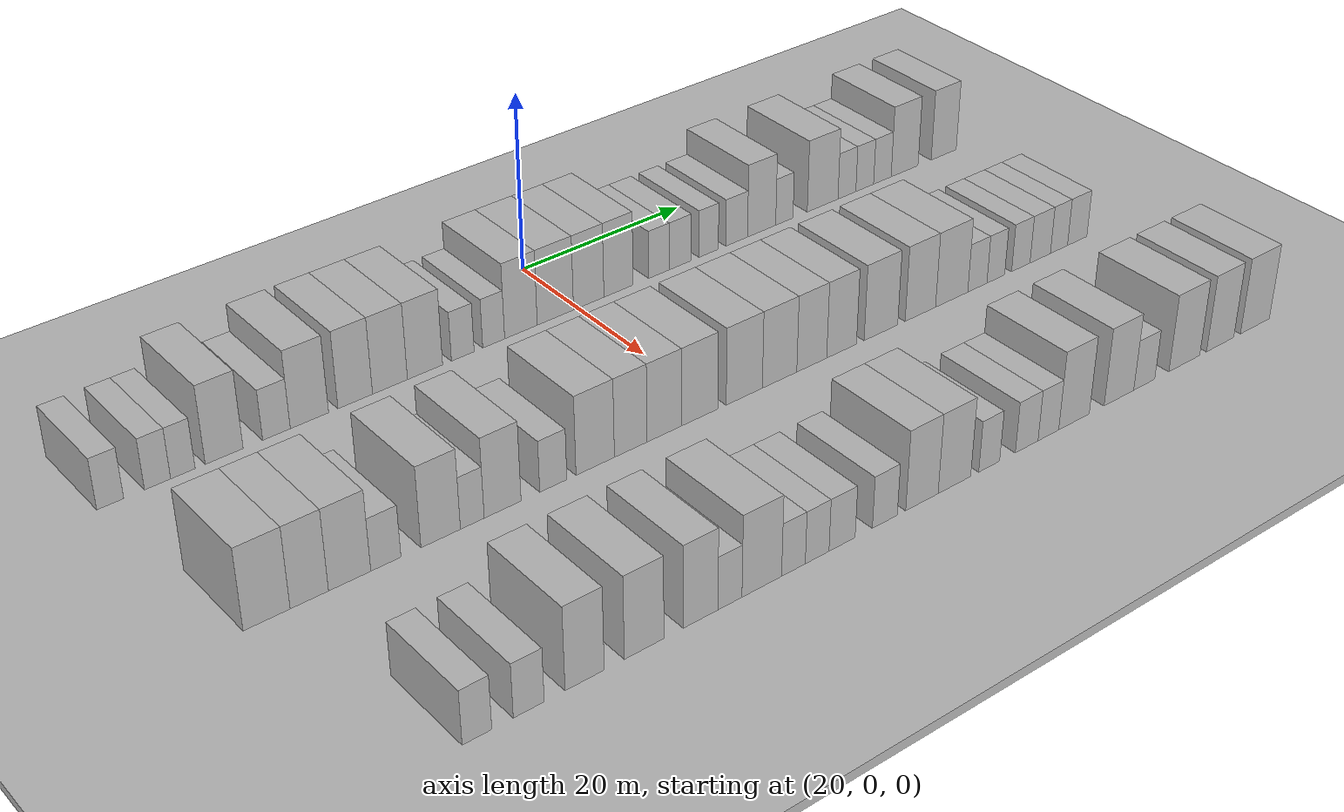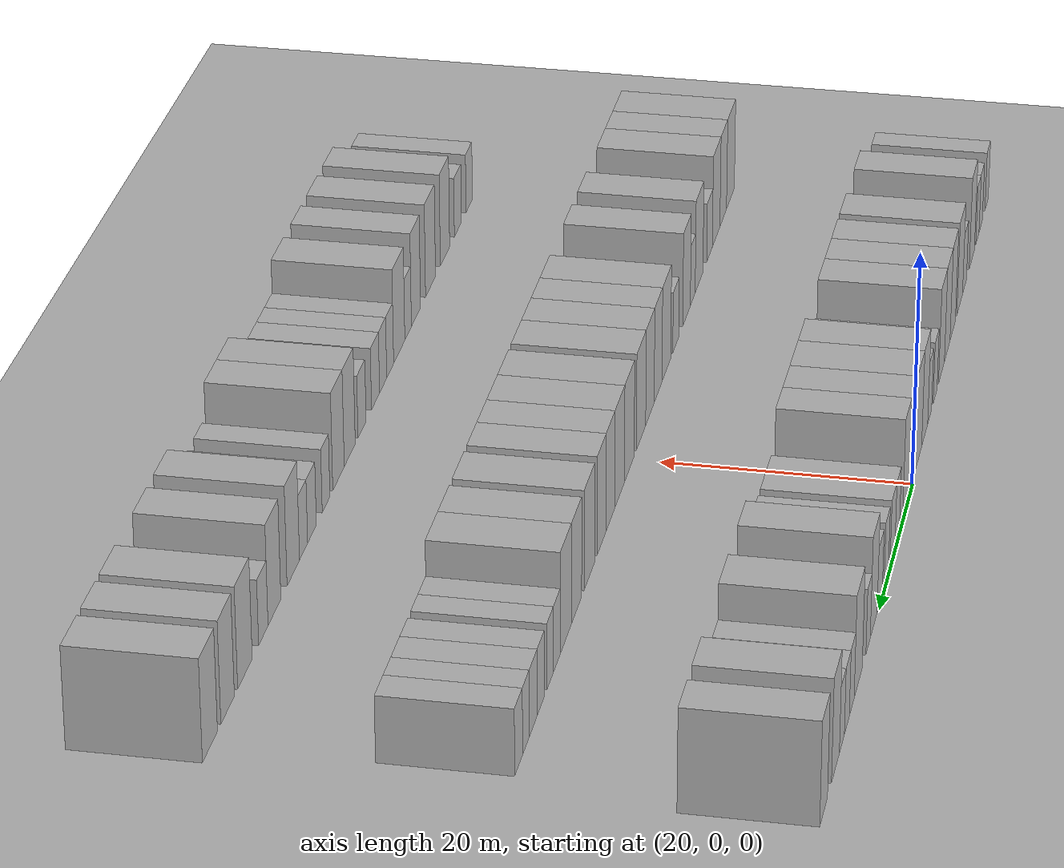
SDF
<sdf version="1.6">
 <world name="default">
  <include><name>ground_plane_1</name><uri>model://HANNAS_ground_plane</uri></include>
  <include>
   <name>ground_plane_2</name>
   <uri>model://HANNAS_ground_plane</uri>
   <pose>100 0 0  0 0 0</pose>
  </include>
  <model name="building_52">
   <static>1</static>
   <pose>25.0000 -51.0247 0 0.000000 0.000000 0.000000</pose>
   <link name="link">
    <pose>0 0 3.00 0 0 0</pose>
    <collision name="collision"><geometry><box><size>10.0000 2.5720 6.0000</size></box></geometry></collision>
    <visual name="visual">
     <cast_shadows>0</cast_shadows>
     <geometry><box><size>10.0000 2.5720 6.0000</size></box></geometry>
     <material>
      <script>
       <uri>model://HANNAS_wall/materials/scripts</uri>
       <uri>model://HANNAS_wall/materials/textures</uri>
       <name>vrc/HANNAS_wall</name>
      </script>
     </material>
    </visual>
   </link>
  </model>
  <model name="building_53">
   <static>1</static>
   <pose>25.0000 -46.4626 0 0.000000 0.000000 0.000000</pose>
   <link name="link">
    <pose>0 0 3.00 0 0 0</pose>
    <collision name="collision"><geometry><box><size>10.0000 2.5521 6.0000</size></box></geometry></collision>
    <visual name="visual">
     <cast_shadows>0</cast_shadows>
     <geometry><box><size>10.0000 2.5521 6.0000</size></box></geometry>
     <material>
      <script>
       <uri>model://HANNAS_wall/materials/scripts</uri>
       <uri>model://HANNAS_wall/materials/textures</uri>
       <name>vrc/HANNAS_wall</name>
      </script>
     </material>
    </visual>
   </link>
  </model>
  <model name="building_54">
   <static>1</static>
   <pose>25.0000 -43.9771 0 0.000000 0.000000 0.000000</pose>
   <link name="link">
    <pose>0 0 3.00 0 0 0</pose>
    <collision name="collision"><geometry><box><size>10.0000 2.4189 6.0000</size></box></geometry></collision>
    <visual name="visual">
     <cast_shadows>0</cast_shadows>
     <geometry><box><size>10.0000 2.4189 6.0000</size></box></geometry>
     <material>
      <script>
       <uri>model://HANNAS_wall/materials/scripts</uri>
       <uri>model://HANNAS_wall/materials/textures</uri>
       <name>vrc/HANNAS_wall</name>
      </script>
     </material>
    </visual>
   </link>
  </model>
  <model name="building_55">
   <static>1</static>
   <pose>25.0000 -39.8528 0 0.000000 0.000000 0.000000</pose>
   <link name="link">
    <pose>0 0 4.50 0 0 0</pose>
    <collision name="collision"><geometry><box><size>10.0000 3.8297 9.0000</size></box></geometry></collision>
    <visual name="visual">
     <cast_shadows>0</cast_shadows>
     <geometry><box><size>10.0000 3.8297 9.0000</size></box></geometry>
     <material>
      <script>
       <uri>model://HANNAS_wall/materials/scripts</uri>
       <uri>model://HANNAS_wall/materials/textures</uri>
       <name>vrc/HANNAS_wall</name>
      </script>
     </material>
    </visual>
   </link>
  </model>
  <model name="building_56">
   <static>1</static>
   <pose>25.0000 -34.5023 0 0.000000 0.000000 0.000000</pose>
   <link name="link">
    <pose>0 0 3.00 0 0 0</pose>
    <collision name="collision"><geometry><box><size>10.0000 2.8714 6.0000</size></box></geometry></collision>
    <visual name="visual">
     <cast_shadows>0</cast_shadows>
     <geometry><box><size>10.0000 2.8714 6.0000</size></box></geometry>
     <material>
      <script>
       <uri>model://HANNAS_wall/materials/scripts</uri>
       <uri>model://HANNAS_wall/materials/textures</uri>
       <name>vrc/HANNAS_wall</name>
      </script>
     </material>
    </visual>
   </link>
  </model>
  <model name="building_57">
   <static>1</static>
   <pose>25.0000 -31.0442 0 0.000000 0.000000 0.000000</pose>
   <link name="link">
    <pose>0 0 4.50 0 0 0</pose>
    <collision name="collision"><geometry><box><size>10.0000 4.0449 9.0000</size></box></geometry></collision>
    <visual name="visual">
     <cast_shadows>0</cast_shadows>
     <geometry><box><size>10.0000 4.0449 9.0000</size></box></geometry>
     <material>
      <script>
       <uri>model://HANNAS_wall/materials/scripts</uri>
       <uri>model://HANNAS_wall/materials/textures</uri>
       <name>vrc/HANNAS_wall</name>
      </script>
     </material>
    </visual>
   </link>
  </model>
  <model name="building_58">
   <static>1</static>
   <pose>25.0000 -26.1471 0 0.000000 0.000000 0.000000</pose>
   <link name="link">
    <pose>0 0 4.50 0 0 0</pose>
    <collision name="collision"><geometry><box><size>10.0000 3.7493 9.0000</size></box></geometry></collision>
    <visual name="visual">
     <cast_shadows>0</cast_shadows>
     <geometry><box><size>10.0000 3.7493 9.0000</size></box></geometry>
     <material>
      <script>
       <uri>model://HANNAS_wall/materials/scripts</uri>
       <uri>model://HANNAS_wall/materials/textures</uri>
       <name>vrc/HANNAS_wall</name>
      </script>
     </material>
    </visual>
   </link>
  </model>
  <model name="building_59">
   <static>1</static>
   <pose>25.0000 -22.3431 0 0.000000 0.000000 0.000000</pose>
   <link name="link">
    <pose>0 0 4.50 0 0 0</pose>
    <collision name="collision"><geometry><box><size>10.0000 3.8588 9.0000</size></box></geometry></collision>
    <visual name="visual">
     <cast_shadows>0</cast_shadows>
     <geometry><box><size>10.0000 3.8588 9.0000</size></box></geometry>
     <material>
      <script>
       <uri>model://HANNAS_wall/materials/scripts</uri>
       <uri>model://HANNAS_wall/materials/textures</uri>
       <name>vrc/HANNAS_wall</name>
      </script>
     </material>
    </visual>
   </link>
  </model>
  <model name="building_60">
   <static>1</static>
   <pose>25.0000 -18.4371 0 0.000000 0.000000 0.000000</pose>
   <link name="link">
    <pose>0 0 4.50 0 0 0</pose>
    <collision name="collision"><geometry><box><size>10.0000 3.9530 9.0000</size></box></geometry></collision>
    <visual name="visual">
     <cast_shadows>0</cast_shadows>
     <geometry><box><size>10.0000 3.9530 9.0000</size></box></geometry>
     <material>
      <script>
       <uri>model://HANNAS_wall/materials/scripts</uri>
       <uri>model://HANNAS_wall/materials/textures</uri>
       <name>vrc/HANNAS_wall</name>
      </script>
     </material>
    </visual>
   </link>
  </model>
  <model name="building_61">
   <static>1</static>
   <pose>25.0000 -14.1558 0 0.000000 0.000000 0.000000</pose>
   <link name="link">
    <pose>0 0 3.00 0 0 0</pose>
    <collision name="collision"><geometry><box><size>10.0000 2.6096 6.0000</size></box></geometry></collision>
    <visual name="visual">
     <cast_shadows>0</cast_shadows>
     <geometry><box><size>10.0000 2.6096 6.0000</size></box></geometry>
     <material>
      <script>
       <uri>model://HANNAS_wall/materials/scripts</uri>
       <uri>model://HANNAS_wall/materials/textures</uri>
       <name>vrc/HANNAS_wall</name>
      </script>
     </material>
    </visual>
   </link>
  </model>
  <model name="building_62">
   <static>1</static>
   <pose>25.0000 -10.5716 0 0.000000 0.000000 0.000000</pose>
   <link name="link">
    <pose>0 0 3.00 0 0 0</pose>
    <collision name="collision"><geometry><box><size>10.0000 2.5587 6.0000</size></box></geometry></collision>
    <visual name="visual">
     <cast_shadows>0</cast_shadows>
     <geometry><box><size>10.0000 2.5587 6.0000</size></box></geometry>
     <material>
      <script>
       <uri>model://HANNAS_wall/materials/scripts</uri>
       <uri>model://HANNAS_wall/materials/textures</uri>
       <name>vrc/HANNAS_wall</name>
      </script>
     </material>
    </visual>
   </link>
  </model>
  <model name="building_63">
   <static>1</static>
   <pose>25.0000 -7.3534 0 0.000000 0.000000 0.000000</pose>
   <link name="link">
    <pose>0 0 4.50 0 0 0</pose>
    <collision name="collision"><geometry><box><size>10.0000 3.8778 9.0000</size></box></geometry></collision>
    <visual name="visual">
     <cast_shadows>0</cast_shadows>
     <geometry><box><size>10.0000 3.8778 9.0000</size></box></geometry>
     <material>
      <script>
       <uri>model://HANNAS_wall/materials/scripts</uri>
       <uri>model://HANNAS_wall/materials/textures</uri>
       <name>vrc/HANNAS_wall</name>
      </script>
     </material>
    </visual>
   </link>
  </model>
  <model name="building_64">
   <static>1</static>
   <pose>25.0000 -3.2205 0 0.000000 0.000000 0.000000</pose>
   <link name="link">
    <pose>0 0 4.50 0 0 0</pose>
    <collision name="collision"><geometry><box><size>10.0000 4.3879 9.0000</size></box></geometry></collision>
    <visual name="visual">
     <cast_shadows>0</cast_shadows>
     <geometry><box><size>10.0000 4.3879 9.0000</size></box></geometry>
     <material>
      <script>
       <uri>model://HANNAS_wall/materials/scripts</uri>
       <uri>model://HANNAS_wall/materials/textures</uri>
       <name>vrc/HANNAS_wall</name>
      </script>
     </material>
    </visual>
   </link>
  </model>
  <model name="building_65">
   <static>1</static>
   <pose>25.0000 0.8537 0 0.000000 0.000000 0.000000</pose>
   <link name="link">
    <pose>0 0 4.50 0 0 0</pose>
    <collision name="collision"><geometry><box><size>10.0000 3.7605 9.0000</size></box></geometry></collision>
    <visual name="visual">
     <cast_shadows>0</cast_shadows>
     <geometry><box><size>10.0000 3.7605 9.0000</size></box></geometry>
     <material>
      <script>
       <uri>model://HANNAS_wall/materials/scripts</uri>
       <uri>model://HANNAS_wall/materials/textures</uri>
       <name>vrc/HANNAS_wall</name>
      </script>
     </material>
    </visual>
   </link>
  </model>
  <model name="building_66">
   <static>1</static>
   <pose>25.0000 4.5661 0 0.000000 0.000000 0.000000</pose>
   <link name="link">
    <pose>0 0 4.50 0 0 0</pose>
    <collision name="collision"><geometry><box><size>10.0000 3.6642 9.0000</size></box></geometry></collision>
    <visual name="visual">
     <cast_shadows>0</cast_shadows>
     <geometry><box><size>10.0000 3.6642 9.0000</size></box></geometry>
     <material>
      <script>
       <uri>model://HANNAS_wall/materials/scripts</uri>
       <uri>model://HANNAS_wall/materials/textures</uri>
       <name>vrc/HANNAS_wall</name>
      </script>
     </material>
    </visual>
   </link>
  </model>
  <model name="building_67">
   <static>1</static>
   <pose>25.0000 9.7088 0 0.000000 0.000000 0.000000</pose>
   <link name="link">
    <pose>0 0 3.00 0 0 0</pose>
    <collision name="collision"><geometry><box><size>10.0000 2.6213 6.0000</size></box></geometry></collision>
    <visual name="visual">
     <cast_shadows>0</cast_shadows>
     <geometry><box><size>10.0000 2.6213 6.0000</size></box></geometry>
     <material>
      <script>
       <uri>model://HANNAS_wall/materials/scripts</uri>
       <uri>model://HANNAS_wall/materials/textures</uri>
       <name>vrc/HANNAS_wall</name>
      </script>
     </material>
    </visual>
   </link>
  </model>
  <model name="building_68">
   <static>1</static>
   <pose>25.0000 12.4688 0 0.000000 0.000000 0.000000</pose>
   <link name="link">
    <pose>0 0 3.00 0 0 0</pose>
    <collision name="collision"><geometry><box><size>10.0000 2.8986 6.0000</size></box></geometry></collision>
    <visual name="visual">
     <cast_shadows>0</cast_shadows>
     <geometry><box><size>10.0000 2.8986 6.0000</size></box></geometry>
     <material>
      <script>
       <uri>model://HANNAS_wall/materials/scripts</uri>
       <uri>model://HANNAS_wall/materials/textures</uri>
       <name>vrc/HANNAS_wall</name>
      </script>
     </material>
    </visual>
   </link>
  </model>
  <model name="building_69">
   <static>1</static>
   <pose>25.0000 16.1987 0 0.000000 0.000000 0.000000</pose>
   <link name="link">
    <pose>0 0 3.00 0 0 0</pose>
    <collision name="collision"><geometry><box><size>10.0000 2.5612 6.0000</size></box></geometry></collision>
    <visual name="visual">
     <cast_shadows>0</cast_shadows>
     <geometry><box><size>10.0000 2.5612 6.0000</size></box></geometry>
     <material>
      <script>
       <uri>model://HANNAS_wall/materials/scripts</uri>
       <uri>model://HANNAS_wall/materials/textures</uri>
       <name>vrc/HANNAS_wall</name>
      </script>
     </material>
    </visual>
   </link>
  </model>
  <model name="building_70">
   <static>1</static>
   <pose>25.0000 19.9389 0 0.000000 0.000000 0.000000</pose>
   <link name="link">
    <pose>0 0 3.00 0 0 0</pose>
    <collision name="collision"><geometry><box><size>10.0000 2.9192 6.0000</size></box></geometry></collision>
    <visual name="visual">
     <cast_shadows>0</cast_shadows>
     <geometry><box><size>10.0000 2.9192 6.0000</size></box></geometry>
     <material>
      <script>
       <uri>model://HANNAS_wall/materials/scripts</uri>
       <uri>model://HANNAS_wall/materials/textures</uri>
       <name>vrc/HANNAS_wall</name>
      </script>
     </material>
    </visual>
   </link>
  </model>
  <model name="building_71">
   <static>1</static>
   <pose>25.0000 23.3274 0 0.000000 0.000000 0.000000</pose>
   <link name="link">
    <pose>0 0 4.50 0 0 0</pose>
    <collision name="collision"><geometry><box><size>10.0000 3.8577 9.0000</size></box></geometry></collision>
    <visual name="visual">
     <cast_shadows>0</cast_shadows>
     <geometry><box><size>10.0000 3.8577 9.0000</size></box></geometry>
     <material>
      <script>
       <uri>model://HANNAS_wall/materials/scripts</uri>
       <uri>model://HANNAS_wall/materials/textures</uri>
       <name>vrc/HANNAS_wall</name>
      </script>
     </material>
    </visual>
   </link>
  </model>
  <model name="building_72">
   <static>1</static>
   <pose>25.0000 26.4591 0 0.000000 0.000000 0.000000</pose>
   <link name="link">
    <pose>0 0 3.00 0 0 0</pose>
    <collision name="collision"><geometry><box><size>10.0000 2.4058 6.0000</size></box></geometry></collision>
    <visual name="visual">
     <cast_shadows>0</cast_shadows>
     <geometry><box><size>10.0000 2.4058 6.0000</size></box></geometry>
     <material>
      <script>
       <uri>model://HANNAS_wall/materials/scripts</uri>
       <uri>model://HANNAS_wall/materials/textures</uri>
       <name>vrc/HANNAS_wall</name>
      </script>
     </material>
    </visual>
   </link>
  </model>
  <model name="building_73">
   <static>1</static>
   <pose>25.0000 31.8438 0 0.000000 0.000000 0.000000</pose>
   <link name="link">
    <pose>0 0 4.50 0 0 0</pose>
    <collision name="collision"><geometry><box><size>10.0000 4.3636 9.0000</size></box></geometry></collision>
    <visual name="visual">
     <cast_shadows>0</cast_shadows>
     <geometry><box><size>10.0000 4.3636 9.0000</size></box></geometry>
     <material>
      <script>
       <uri>model://HANNAS_wall/materials/scripts</uri>
       <uri>model://HANNAS_wall/materials/textures</uri>
       <name>vrc/HANNAS_wall</name>
      </script>
     </material>
    </visual>
   </link>
  </model>
  <model name="building_74">
   <static>1</static>
   <pose>25.0000 35.3195 0 0.000000 0.000000 0.000000</pose>
   <link name="link">
    <pose>0 0 3.00 0 0 0</pose>
    <collision name="collision"><geometry><box><size>10.0000 2.5879 6.0000</size></box></geometry></collision>
    <visual name="visual">
     <cast_shadows>0</cast_shadows>
     <geometry><box><size>10.0000 2.5879 6.0000</size></box></geometry>
     <material>
      <script>
       <uri>model://HANNAS_wall/materials/scripts</uri>
       <uri>model://HANNAS_wall/materials/textures</uri>
       <name>vrc/HANNAS_wall</name>
      </script>
     </material>
    </visual>
   </link>
  </model>
  <model name="building_75">
   <static>1</static>
   <pose>25.0000 37.9067 0 0.000000 0.000000 0.000000</pose>
   <link name="link">
    <pose>0 0 3.00 0 0 0</pose>
    <collision name="collision"><geometry><box><size>10.0000 2.5865 6.0000</size></box></geometry></collision>
    <visual name="visual">
     <cast_shadows>0</cast_shadows>
     <geometry><box><size>10.0000 2.5865 6.0000</size></box></geometry>
     <material>
      <script>
       <uri>model://HANNAS_wall/materials/scripts</uri>
       <uri>model://HANNAS_wall/materials/textures</uri>
       <name>vrc/HANNAS_wall</name>
      </script>
     </material>
    </visual>
   </link>
  </model>
  <model name="building_76">
   <static>1</static>
   <pose>25.0000 40.4949 0 0.000000 0.000000 0.000000</pose>
   <link name="link">
    <pose>0 0 3.00 0 0 0</pose>
    <collision name="collision"><geometry><box><size>10.0000 2.5899 6.0000</size></box></geometry></collision>
    <visual name="visual">
     <cast_shadows>0</cast_shadows>
     <geometry><box><size>10.0000 2.5899 6.0000</size></box></geometry>
     <material>
      <script>
       <uri>model://HANNAS_wall/materials/scripts</uri>
       <uri>model://HANNAS_wall/materials/textures</uri>
       <name>vrc/HANNAS_wall</name>
      </script>
     </material>
    </visual>
   </link>
  </model>
  <model name="building_77">
   <static>1</static>
   <pose>25.0000 43.8039 0 0.000000 0.000000 0.000000</pose>
   <link name="link">
    <pose>0 0 4.50 0 0 0</pose>
    <collision name="collision"><geometry><box><size>10.0000 4.0281 9.0000</size></box></geometry></collision>
    <visual name="visual">
     <cast_shadows>0</cast_shadows>
     <geometry><box><size>10.0000 4.0281 9.0000</size></box></geometry>
     <material>
      <script>
       <uri>model://HANNAS_wall/materials/scripts</uri>
       <uri>model://HANNAS_wall/materials/textures</uri>
       <name>vrc/HANNAS_wall</name>
      </script>
     </material>
    </visual>
   </link>
  </model>
  <model name="building_78">
   <static>1</static>
   <pose>25.0000 49.7385 0 0.000000 0.000000 0.000000</pose>
   <link name="link">
    <pose>0 0 4.50 0 0 0</pose>
    <collision name="collision"><geometry><box><size>10.0000 3.8412 9.0000</size></box></geometry></collision>
    <visual name="visual">
     <cast_shadows>0</cast_shadows>
     <geometry><box><size>10.0000 3.8412 9.0000</size></box></geometry>
     <material>
      <script>
       <uri>model://HANNAS_wall/materials/scripts</uri>
       <uri>model://HANNAS_wall/materials/textures</uri>
       <name>vrc/HANNAS_wall</name>
      </script>
     </material>
    </visual>
   </link>
  </model>
  <model name="building_173">
   <static>1</static>
   <pose>47.0000 -48.1587 0 0.000000 0.000000 0.000000</pose>
   <link name="link">
    <pose>0 0 4.50 0 0 0</pose>
    <collision name="collision"><geometry><box><size>10.0000 4.3637 9.0000</size></box></geometry></collision>
    <visual name="visual">
     <cast_shadows>0</cast_shadows>
     <geometry><box><size>10.0000 4.3637 9.0000</size></box></geometry>
     <material>
      <script>
       <uri>model://HANNAS_wall/materials/scripts</uri>
       <uri>model://HANNAS_wall/materials/textures</uri>
       <name>vrc/HANNAS_wall</name>
      </script>
     </material>
    </visual>
   </link>
  </model>
  <model name="building_174">
   <static>1</static>
   <pose>47.0000 -44.1613 0 0.000000 0.000000 0.000000</pose>
   <link name="link">
    <pose>0 0 4.50 0 0 0</pose>
    <collision name="collision"><geometry><box><size>10.0000 3.6310 9.0000</size></box></geometry></collision>
    <visual name="visual">
     <cast_shadows>0</cast_shadows>
     <geometry><box><size>10.0000 3.6310 9.0000</size></box></geometry>
     <material>
      <script>
       <uri>model://HANNAS_wall/materials/scripts</uri>
       <uri>model://HANNAS_wall/materials/textures</uri>
       <name>vrc/HANNAS_wall</name>
      </script>
     </material>
    </visual>
   </link>
  </model>
  <model name="building_175">
   <static>1</static>
   <pose>47.0000 -40.2994 0 0.000000 0.000000 0.000000</pose>
   <link name="link">
    <pose>0 0 4.50 0 0 0</pose>
    <collision name="collision"><geometry><box><size>10.0000 4.0929 9.0000</size></box></geometry></collision>
    <visual name="visual">
     <cast_shadows>0</cast_shadows>
     <geometry><box><size>10.0000 4.0929 9.0000</size></box></geometry>
     <material>
      <script>
       <uri>model://HANNAS_wall/materials/scripts</uri>
       <uri>model://HANNAS_wall/materials/textures</uri>
       <name>vrc/HANNAS_wall</name>
      </script>
     </material>
    </visual>
   </link>
  </model>
  <model name="building_176">
   <static>1</static>
   <pose>47.0000 -36.7631 0 0.000000 0.000000 0.000000</pose>
   <link name="link">
    <pose>0 0 3.00 0 0 0</pose>
    <collision name="collision"><geometry><box><size>10.0000 2.9797 6.0000</size></box></geometry></collision>
    <visual name="visual">
     <cast_shadows>0</cast_shadows>
     <geometry><box><size>10.0000 2.9797 6.0000</size></box></geometry>
     <material>
      <script>
       <uri>model://HANNAS_wall/materials/scripts</uri>
       <uri>model://HANNAS_wall/materials/textures</uri>
       <name>vrc/HANNAS_wall</name>
      </script>
     </material>
    </visual>
   </link>
  </model>
  <model name="building_177">
   <static>1</static>
   <pose>47.0000 -31.2637 0 0.000000 0.000000 0.000000</pose>
   <link name="link">
    <pose>0 0 4.50 0 0 0</pose>
    <collision name="collision"><geometry><box><size>10.0000 4.0190 9.0000</size></box></geometry></collision>
    <visual name="visual">
     <cast_shadows>0</cast_shadows>
     <geometry><box><size>10.0000 4.0190 9.0000</size></box></geometry>
     <material>
      <script>
       <uri>model://HANNAS_wall/materials/scripts</uri>
       <uri>model://HANNAS_wall/materials/textures</uri>
       <name>vrc/HANNAS_wall</name>
      </script>
     </material>
    </visual>
   </link>
  </model>
  <model name="building_178">
   <static>1</static>
   <pose>47.0000 -28.0204 0 0.000000 0.000000 0.000000</pose>
   <link name="link">
    <pose>0 0 3.00 0 0 0</pose>
    <collision name="collision"><geometry><box><size>10.0000 2.4677 6.0000</size></box></geometry></collision>
    <visual name="visual">
     <cast_shadows>0</cast_shadows>
     <geometry><box><size>10.0000 2.4677 6.0000</size></box></geometry>
     <material>
      <script>
       <uri>model://HANNAS_wall/materials/scripts</uri>
       <uri>model://HANNAS_wall/materials/textures</uri>
       <name>vrc/HANNAS_wall</name>
      </script>
     </material>
    </visual>
   </link>
  </model>
  <model name="building_179">
   <static>1</static>
   <pose>47.0000 -24.8448 0 0.000000 0.000000 0.000000</pose>
   <link name="link">
    <pose>0 0 4.50 0 0 0</pose>
    <collision name="collision"><geometry><box><size>10.0000 3.8834 9.0000</size></box></geometry></collision>
    <visual name="visual">
     <cast_shadows>0</cast_shadows>
     <geometry><box><size>10.0000 3.8834 9.0000</size></box></geometry>
     <material>
      <script>
       <uri>model://HANNAS_wall/materials/scripts</uri>
       <uri>model://HANNAS_wall/materials/textures</uri>
       <name>vrc/HANNAS_wall</name>
      </script>
     </material>
    </visual>
   </link>
  </model>
  <model name="building_180">
   <static>1</static>
   <pose>47.0000 -19.4322 0 0.000000 0.000000 0.000000</pose>
   <link name="link">
    <pose>0 0 3.00 0 0 0</pose>
    <collision name="collision"><geometry><box><size>10.0000 2.9420 6.0000</size></box></geometry></collision>
    <visual name="visual">
     <cast_shadows>0</cast_shadows>
     <geometry><box><size>10.0000 2.9420 6.0000</size></box></geometry>
     <material>
      <script>
       <uri>model://HANNAS_wall/materials/scripts</uri>
       <uri>model://HANNAS_wall/materials/textures</uri>
       <name>vrc/HANNAS_wall</name>
      </script>
     </material>
    </visual>
   </link>
  </model>
  <model name="building_181">
   <static>1</static>
   <pose>47.0000 -14.8256 0 0.000000 0.000000 0.000000</pose>
   <link name="link">
    <pose>0 0 4.50 0 0 0</pose>
    <collision name="collision"><geometry><box><size>10.0000 4.2712 9.0000</size></box></geometry></collision>
    <visual name="visual">
     <cast_shadows>0</cast_shadows>
     <geometry><box><size>10.0000 4.2712 9.0000</size></box></geometry>
     <material>
      <script>
       <uri>model://HANNAS_wall/materials/scripts</uri>
       <uri>model://HANNAS_wall/materials/textures</uri>
       <name>vrc/HANNAS_wall</name>
      </script>
     </material>
    </visual>
   </link>
  </model>
  <model name="building_182">
   <static>1</static>
   <pose>47.0000 -10.8338 0 0.000000 0.000000 0.000000</pose>
   <link name="link">
    <pose>0 0 4.50 0 0 0</pose>
    <collision name="collision"><geometry><box><size>10.0000 3.7123 9.0000</size></box></geometry></collision>
    <visual name="visual">
     <cast_shadows>0</cast_shadows>
     <geometry><box><size>10.0000 3.7123 9.0000</size></box></geometry>
     <material>
      <script>
       <uri>model://HANNAS_wall/materials/scripts</uri>
       <uri>model://HANNAS_wall/materials/textures</uri>
       <name>vrc/HANNAS_wall</name>
      </script>
     </material>
    </visual>
   </link>
  </model>
  <model name="building_183">
   <static>1</static>
   <pose>47.0000 -6.9833 0 0.000000 0.000000 0.000000</pose>
   <link name="link">
    <pose>0 0 4.50 0 0 0</pose>
    <collision name="collision"><geometry><box><size>10.0000 3.9887 9.0000</size></box></geometry></collision>
    <visual name="visual">
     <cast_shadows>0</cast_shadows>
     <geometry><box><size>10.0000 3.9887 9.0000</size></box></geometry>
     <material>
      <script>
       <uri>model://HANNAS_wall/materials/scripts</uri>
       <uri>model://HANNAS_wall/materials/textures</uri>
       <name>vrc/HANNAS_wall</name>
      </script>
     </material>
    </visual>
   </link>
  </model>
  <model name="building_184">
   <static>1</static>
   <pose>47.0000 -2.8457 0 0.000000 0.000000 0.000000</pose>
   <link name="link">
    <pose>0 0 4.50 0 0 0</pose>
    <collision name="collision"><geometry><box><size>10.0000 4.2864 9.0000</size></box></geometry></collision>
    <visual name="visual">
     <cast_shadows>0</cast_shadows>
     <geometry><box><size>10.0000 4.2864 9.0000</size></box></geometry>
     <material>
      <script>
       <uri>model://HANNAS_wall/materials/scripts</uri>
       <uri>model://HANNAS_wall/materials/textures</uri>
       <name>vrc/HANNAS_wall</name>
      </script>
     </material>
    </visual>
   </link>
  </model>
  <model name="building_185">
   <static>1</static>
   <pose>47.0000 2.4934 0 0.000000 0.000000 0.000000</pose>
   <link name="link">
    <pose>0 0 4.50 0 0 0</pose>
    <collision name="collision"><geometry><box><size>10.0000 4.3920 9.0000</size></box></geometry></collision>
    <visual name="visual">
     <cast_shadows>0</cast_shadows>
     <geometry><box><size>10.0000 4.3920 9.0000</size></box></geometry>
     <material>
      <script>
       <uri>model://HANNAS_wall/materials/scripts</uri>
       <uri>model://HANNAS_wall/materials/textures</uri>
       <name>vrc/HANNAS_wall</name>
      </script>
     </material>
    </visual>
   </link>
  </model>
  <model name="building_186">
   <static>1</static>
   <pose>47.0000 6.8278 0 0.000000 0.000000 0.000000</pose>
   <link name="link">
    <pose>0 0 4.50 0 0 0</pose>
    <collision name="collision"><geometry><box><size>10.0000 4.2767 9.0000</size></box></geometry></collision>
    <visual name="visual">
     <cast_shadows>0</cast_shadows>
     <geometry><box><size>10.0000 4.2767 9.0000</size></box></geometry>
     <material>
      <script>
       <uri>model://HANNAS_wall/materials/scripts</uri>
       <uri>model://HANNAS_wall/materials/textures</uri>
       <name>vrc/HANNAS_wall</name>
      </script>
     </material>
    </visual>
   </link>
  </model>
  <model name="building_187">
   <static>1</static>
   <pose>47.0000 10.8590 0 0.000000 0.000000 0.000000</pose>
   <link name="link">
    <pose>0 0 4.50 0 0 0</pose>
    <collision name="collision"><geometry><box><size>10.0000 3.7857 9.0000</size></box></geometry></collision>
    <visual name="visual">
     <cast_shadows>0</cast_shadows>
     <geometry><box><size>10.0000 3.7857 9.0000</size></box></geometry>
     <material>
      <script>
       <uri>model://HANNAS_wall/materials/scripts</uri>
       <uri>model://HANNAS_wall/materials/textures</uri>
       <name>vrc/HANNAS_wall</name>
      </script>
     </material>
    </visual>
   </link>
  </model>
  <model name="building_188">
   <static>1</static>
   <pose>47.0000 14.6752 0 0.000000 0.000000 0.000000</pose>
   <link name="link">
    <pose>0 0 4.50 0 0 0</pose>
    <collision name="collision"><geometry><box><size>10.0000 3.8468 9.0000</size></box></geometry></collision>
    <visual name="visual">
     <cast_shadows>0</cast_shadows>
     <geometry><box><size>10.0000 3.8468 9.0000</size></box></geometry>
     <material>
      <script>
       <uri>model://HANNAS_wall/materials/scripts</uri>
       <uri>model://HANNAS_wall/materials/textures</uri>
       <name>vrc/HANNAS_wall</name>
      </script>
     </material>
    </visual>
   </link>
  </model>
  <model name="building_189">
   <static>1</static>
   <pose>47.0000 19.8191 0 0.000000 0.000000 0.000000</pose>
   <link name="link">
    <pose>0 0 4.50 0 0 0</pose>
    <collision name="collision"><geometry><box><size>10.0000 4.4408 9.0000</size></box></geometry></collision>
    <visual name="visual">
     <cast_shadows>0</cast_shadows>
     <geometry><box><size>10.0000 4.4408 9.0000</size></box></geometry>
     <material>
      <script>
       <uri>model://HANNAS_wall/materials/scripts</uri>
       <uri>model://HANNAS_wall/materials/textures</uri>
       <name>vrc/HANNAS_wall</name>
      </script>
     </material>
    </visual>
   </link>
  </model>
  <model name="building_190">
   <static>1</static>
   <pose>47.0000 25.0992 0 0.000000 0.000000 0.000000</pose>
   <link name="link">
    <pose>0 0 4.50 0 0 0</pose>
    <collision name="collision"><geometry><box><size>10.0000 4.1194 9.0000</size></box></geometry></collision>
    <visual name="visual">
     <cast_shadows>0</cast_shadows>
     <geometry><box><size>10.0000 4.1194 9.0000</size></box></geometry>
     <material>
      <script>
       <uri>model://HANNAS_wall/materials/scripts</uri>
       <uri>model://HANNAS_wall/materials/textures</uri>
       <name>vrc/HANNAS_wall</name>
      </script>
     </material>
    </visual>
   </link>
  </model>
  <model name="building_191">
   <static>1</static>
   <pose>47.0000 29.3911 0 0.000000 0.000000 0.000000</pose>
   <link name="link">
    <pose>0 0 4.50 0 0 0</pose>
    <collision name="collision"><geometry><box><size>10.0000 4.4644 9.0000</size></box></geometry></collision>
    <visual name="visual">
     <cast_shadows>0</cast_shadows>
     <geometry><box><size>10.0000 4.4644 9.0000</size></box></geometry>
     <material>
      <script>
       <uri>model://HANNAS_wall/materials/scripts</uri>
       <uri>model://HANNAS_wall/materials/textures</uri>
       <name>vrc/HANNAS_wall</name>
      </script>
     </material>
    </visual>
   </link>
  </model>
  <model name="building_192">
   <static>1</static>
   <pose>47.0000 32.9718 0 0.000000 0.000000 0.000000</pose>
   <link name="link">
    <pose>0 0 3.00 0 0 0</pose>
    <collision name="collision"><geometry><box><size>10.0000 2.6970 6.0000</size></box></geometry></collision>
    <visual name="visual">
     <cast_shadows>0</cast_shadows>
     <geometry><box><size>10.0000 2.6970 6.0000</size></box></geometry>
     <material>
      <script>
       <uri>model://HANNAS_wall/materials/scripts</uri>
       <uri>model://HANNAS_wall/materials/textures</uri>
       <name>vrc/HANNAS_wall</name>
      </script>
     </material>
    </visual>
   </link>
  </model>
  <model name="building_193">
   <static>1</static>
   <pose>47.0000 35.5860 0 0.000000 0.000000 0.000000</pose>
   <link name="link">
    <pose>0 0 3.00 0 0 0</pose>
    <collision name="collision"><geometry><box><size>10.0000 2.5315 6.0000</size></box></geometry></collision>
    <visual name="visual">
     <cast_shadows>0</cast_shadows>
     <geometry><box><size>10.0000 2.5315 6.0000</size></box></geometry>
     <material>
      <script>
       <uri>model://HANNAS_wall/materials/scripts</uri>
       <uri>model://HANNAS_wall/materials/textures</uri>
       <name>vrc/HANNAS_wall</name>
      </script>
     </material>
    </visual>
   </link>
  </model>
  <model name="building_194">
   <static>1</static>
   <pose>47.0000 39.1845 0 0.000000 0.000000 0.000000</pose>
   <link name="link">
    <pose>0 0 3.00 0 0 0</pose>
    <collision name="collision"><geometry><box><size>10.0000 2.6654 6.0000</size></box></geometry></collision>
    <visual name="visual">
     <cast_shadows>0</cast_shadows>
     <geometry><box><size>10.0000 2.6654 6.0000</size></box></geometry>
     <material>
      <script>
       <uri>model://HANNAS_wall/materials/scripts</uri>
       <uri>model://HANNAS_wall/materials/textures</uri>
       <name>vrc/HANNAS_wall</name>
      </script>
     </material>
    </visual>
   </link>
  </model>
  <model name="building_195">
   <static>1</static>
   <pose>47.0000 42.0144 0 0.000000 0.000000 0.000000</pose>
   <link name="link">
    <pose>0 0 3.00 0 0 0</pose>
    <collision name="collision"><geometry><box><size>10.0000 2.9943 6.0000</size></box></geometry></collision>
    <visual name="visual">
     <cast_shadows>0</cast_shadows>
     <geometry><box><size>10.0000 2.9943 6.0000</size></box></geometry>
     <material>
      <script>
       <uri>model://HANNAS_wall/materials/scripts</uri>
       <uri>model://HANNAS_wall/materials/textures</uri>
       <name>vrc/HANNAS_wall</name>
      </script>
     </material>
    </visual>
   </link>
  </model>
  <model name="building_196">
   <static>1</static>
   <pose>47.0000 44.7816 0 0.000000 0.000000 0.000000</pose>
   <link name="link">
    <pose>0 0 3.00 0 0 0</pose>
    <collision name="collision"><geometry><box><size>10.0000 2.5402 6.0000</size></box></geometry></collision>
    <visual name="visual">
     <cast_shadows>0</cast_shadows>
     <geometry><box><size>10.0000 2.5402 6.0000</size></box></geometry>
     <material>
      <script>
       <uri>model://HANNAS_wall/materials/scripts</uri>
       <uri>model://HANNAS_wall/materials/textures</uri>
       <name>vrc/HANNAS_wall</name>
      </script>
     </material>
    </visual>
   </link>
  </model>
  <model name="building_197">
   <static>1</static>
   <pose>47.0000 47.5078 0 0.000000 0.000000 0.000000</pose>
   <link name="link">
    <pose>0 0 3.00 0 0 0</pose>
    <collision name="collision"><geometry><box><size>10.0000 2.9122 6.0000</size></box></geometry></collision>
    <visual name="visual">
     <cast_shadows>0</cast_shadows>
     <geometry><box><size>10.0000 2.9122 6.0000</size></box></geometry>
     <material>
      <script>
       <uri>model://HANNAS_wall/materials/scripts</uri>
       <uri>model://HANNAS_wall/materials/textures</uri>
       <name>vrc/HANNAS_wall</name>
      </script>
     </material>
    </visual>
   </link>
  </model>
  <model name="building_299">
   <static>1</static>
   <pose>69.0000 -42.5595 0 0.000000 0.000000 0.000000</pose>
   <link name="link">
    <pose>0 0 3.00 0 0 0</pose>
    <collision name="collision"><geometry><box><size>10.0000 2.7324 6.0000</size></box></geometry></collision>
    <visual name="visual">
     <cast_shadows>0</cast_shadows>
     <geometry><box><size>10.0000 2.7324 6.0000</size></box></geometry>
     <material>
      <script>
       <uri>model://HANNAS_wall/materials/scripts</uri>
       <uri>model://HANNAS_wall/materials/textures</uri>
       <name>vrc/HANNAS_wall</name>
      </script>
     </material>
    </visual>
   </link>
  </model>
  <model name="building_300">
   <static>1</static>
   <pose>69.0000 -37.7284 0 0.000000 0.000000 0.000000</pose>
   <link name="link">
    <pose>0 0 3.00 0 0 0</pose>
    <collision name="collision"><geometry><box><size>10.0000 2.9298 6.0000</size></box></geometry></collision>
    <visual name="visual">
     <cast_shadows>0</cast_shadows>
     <geometry><box><size>10.0000 2.9298 6.0000</size></box></geometry>
     <material>
      <script>
       <uri>model://HANNAS_wall/materials/scripts</uri>
       <uri>model://HANNAS_wall/materials/textures</uri>
       <name>vrc/HANNAS_wall</name>
      </script>
     </material>
    </visual>
   </link>
  </model>
  <model name="building_301">
   <static>1</static>
   <pose>69.0000 -32.3467 0 0.000000 0.000000 0.000000</pose>
   <link name="link">
    <pose>0 0 4.50 0 0 0</pose>
    <collision name="collision"><geometry><box><size>10.0000 3.8335 9.0000</size></box></geometry></collision>
    <visual name="visual">
     <cast_shadows>0</cast_shadows>
     <geometry><box><size>10.0000 3.8335 9.0000</size></box></geometry>
     <material>
      <script>
       <uri>model://HANNAS_wall/materials/scripts</uri>
       <uri>model://HANNAS_wall/materials/textures</uri>
       <name>vrc/HANNAS_wall</name>
      </script>
     </material>
    </visual>
   </link>
  </model>
  <model name="building_302">
   <static>1</static>
   <pose>69.0000 -26.4259 0 0.000000 0.000000 0.000000</pose>
   <link name="link">
    <pose>0 0 4.50 0 0 0</pose>
    <collision name="collision"><geometry><box><size>10.0000 4.0081 9.0000</size></box></geometry></collision>
    <visual name="visual">
     <cast_shadows>0</cast_shadows>
     <geometry><box><size>10.0000 4.0081 9.0000</size></box></geometry>
     <material>
      <script>
       <uri>model://HANNAS_wall/materials/scripts</uri>
       <uri>model://HANNAS_wall/materials/textures</uri>
       <name>vrc/HANNAS_wall</name>
      </script>
     </material>
    </visual>
   </link>
  </model>
  <model name="building_303">
   <static>1</static>
   <pose>69.0000 -20.6121 0 0.000000 0.000000 0.000000</pose>
   <link name="link">
    <pose>0 0 4.50 0 0 0</pose>
    <collision name="collision"><geometry><box><size>10.0000 3.6195 9.0000</size></box></geometry></collision>
    <visual name="visual">
     <cast_shadows>0</cast_shadows>
     <geometry><box><size>10.0000 3.6195 9.0000</size></box></geometry>
     <material>
      <script>
       <uri>model://HANNAS_wall/materials/scripts</uri>
       <uri>model://HANNAS_wall/materials/textures</uri>
       <name>vrc/HANNAS_wall</name>
      </script>
     </material>
    </visual>
   </link>
  </model>
  <model name="building_304">
   <static>1</static>
   <pose>69.0000 -17.5235 0 0.000000 0.000000 0.000000</pose>
   <link name="link">
    <pose>0 0 3.00 0 0 0</pose>
    <collision name="collision"><geometry><box><size>10.0000 2.5578 6.0000</size></box></geometry></collision>
    <visual name="visual">
     <cast_shadows>0</cast_shadows>
     <geometry><box><size>10.0000 2.5578 6.0000</size></box></geometry>
     <material>
      <script>
       <uri>model://HANNAS_wall/materials/scripts</uri>
       <uri>model://HANNAS_wall/materials/textures</uri>
       <name>vrc/HANNAS_wall</name>
      </script>
     </material>
    </visual>
   </link>
  </model>
  <model name="building_305">
   <static>1</static>
   <pose>69.0000 -14.0915 0 0.000000 0.000000 0.000000</pose>
   <link name="link">
    <pose>0 0 4.50 0 0 0</pose>
    <collision name="collision"><geometry><box><size>10.0000 4.3061 9.0000</size></box></geometry></collision>
    <visual name="visual">
     <cast_shadows>0</cast_shadows>
     <geometry><box><size>10.0000 4.3061 9.0000</size></box></geometry>
     <material>
      <script>
       <uri>model://HANNAS_wall/materials/scripts</uri>
       <uri>model://HANNAS_wall/materials/textures</uri>
       <name>vrc/HANNAS_wall</name>
      </script>
     </material>
    </visual>
   </link>
  </model>
  <model name="building_306">
   <static>1</static>
   <pose>69.0000 -10.6249 0 0.000000 0.000000 0.000000</pose>
   <link name="link">
    <pose>0 0 3.00 0 0 0</pose>
    <collision name="collision"><geometry><box><size>10.0000 2.6271 6.0000</size></box></geometry></collision>
    <visual name="visual">
     <cast_shadows>0</cast_shadows>
     <geometry><box><size>10.0000 2.6271 6.0000</size></box></geometry>
     <material>
      <script>
       <uri>model://HANNAS_wall/materials/scripts</uri>
       <uri>model://HANNAS_wall/materials/textures</uri>
       <name>vrc/HANNAS_wall</name>
      </script>
     </material>
    </visual>
   </link>
  </model>
  <model name="building_307">
   <static>1</static>
   <pose>69.0000 -7.9775 0 0.000000 0.000000 0.000000</pose>
   <link name="link">
    <pose>0 0 3.00 0 0 0</pose>
    <collision name="collision"><geometry><box><size>10.0000 2.6677 6.0000</size></box></geometry></collision>
    <visual name="visual">
     <cast_shadows>0</cast_shadows>
     <geometry><box><size>10.0000 2.6677 6.0000</size></box></geometry>
     <material>
      <script>
       <uri>model://HANNAS_wall/materials/scripts</uri>
       <uri>model://HANNAS_wall/materials/textures</uri>
       <name>vrc/HANNAS_wall</name>
      </script>
     </material>
    </visual>
   </link>
  </model>
  <model name="building_308">
   <static>1</static>
   <pose>69.0000 -5.1533 0 0.000000 0.000000 0.000000</pose>
   <link name="link">
    <pose>0 0 3.00 0 0 0</pose>
    <collision name="collision"><geometry><box><size>10.0000 2.9808 6.0000</size></box></geometry></collision>
    <visual name="visual">
     <cast_shadows>0</cast_shadows>
     <geometry><box><size>10.0000 2.9808 6.0000</size></box></geometry>
     <material>
      <script>
       <uri>model://HANNAS_wall/materials/scripts</uri>
       <uri>model://HANNAS_wall/materials/textures</uri>
       <name>vrc/HANNAS_wall</name>
      </script>
     </material>
    </visual>
   </link>
  </model>
  <model name="building_309">
   <static>1</static>
   <pose>69.0000 -0.2022 0 0.000000 0.000000 0.000000</pose>
   <link name="link">
    <pose>0 0 3.00 0 0 0</pose>
    <collision name="collision"><geometry><box><size>10.0000 2.9214 6.0000</size></box></geometry></collision>
    <visual name="visual">
     <cast_shadows>0</cast_shadows>
     <geometry><box><size>10.0000 2.9214 6.0000</size></box></geometry>
     <material>
      <script>
       <uri>model://HANNAS_wall/materials/scripts</uri>
       <uri>model://HANNAS_wall/materials/textures</uri>
       <name>vrc/HANNAS_wall</name>
      </script>
     </material>
    </visual>
   </link>
  </model>
  <model name="building_310">
   <static>1</static>
   <pose>69.0000 4.2045 0 0.000000 0.000000 0.000000</pose>
   <link name="link">
    <pose>0 0 4.50 0 0 0</pose>
    <collision name="collision"><geometry><box><size>10.0000 3.8919 9.0000</size></box></geometry></collision>
    <visual name="visual">
     <cast_shadows>0</cast_shadows>
     <geometry><box><size>10.0000 3.8919 9.0000</size></box></geometry>
     <material>
      <script>
       <uri>model://HANNAS_wall/materials/scripts</uri>
       <uri>model://HANNAS_wall/materials/textures</uri>
       <name>vrc/HANNAS_wall</name>
      </script>
     </material>
    </visual>
   </link>
  </model>
  <model name="building_311">
   <static>1</static>
   <pose>69.0000 8.1520 0 0.000000 0.000000 0.000000</pose>
   <link name="link">
    <pose>0 0 4.50 0 0 0</pose>
    <collision name="collision"><geometry><box><size>10.0000 4.0031 9.0000</size></box></geometry></collision>
    <visual name="visual">
     <cast_shadows>0</cast_shadows>
     <geometry><box><size>10.0000 4.0031 9.0000</size></box></geometry>
     <material>
      <script>
       <uri>model://HANNAS_wall/materials/scripts</uri>
       <uri>model://HANNAS_wall/materials/textures</uri>
       <name>vrc/HANNAS_wall</name>
      </script>
     </material>
    </visual>
   </link>
  </model>
  <model name="building_312">
   <static>1</static>
   <pose>69.0000 12.4653 0 0.000000 0.000000 0.000000</pose>
   <link name="link">
    <pose>0 0 3.00 0 0 0</pose>
    <collision name="collision"><geometry><box><size>10.0000 2.6234 6.0000</size></box></geometry></collision>
    <visual name="visual">
     <cast_shadows>0</cast_shadows>
     <geometry><box><size>10.0000 2.6234 6.0000</size></box></geometry>
     <material>
      <script>
       <uri>model://HANNAS_wall/materials/scripts</uri>
       <uri>model://HANNAS_wall/materials/textures</uri>
       <name>vrc/HANNAS_wall</name>
      </script>
     </material>
    </visual>
   </link>
  </model>
  <model name="building_313">
   <static>1</static>
   <pose>69.0000 17.2370 0 0.000000 0.000000 0.000000</pose>
   <link name="link">
    <pose>0 0 3.00 0 0 0</pose>
    <collision name="collision"><geometry><box><size>10.0000 2.9200 6.0000</size></box></geometry></collision>
    <visual name="visual">
     <cast_shadows>0</cast_shadows>
     <geometry><box><size>10.0000 2.9200 6.0000</size></box></geometry>
     <material>
      <script>
       <uri>model://HANNAS_wall/materials/scripts</uri>
       <uri>model://HANNAS_wall/materials/textures</uri>
       <name>vrc/HANNAS_wall</name>
      </script>
     </material>
    </visual>
   </link>
  </model>
  <model name="building_314">
   <static>1</static>
   <pose>69.0000 20.0458 0 0.000000 0.000000 0.000000</pose>
   <link name="link">
    <pose>0 0 3.00 0 0 0</pose>
    <collision name="collision"><geometry><box><size>10.0000 2.6975 6.0000</size></box></geometry></collision>
    <visual name="visual">
     <cast_shadows>0</cast_shadows>
     <geometry><box><size>10.0000 2.6975 6.0000</size></box></geometry>
     <material>
      <script>
       <uri>model://HANNAS_wall/materials/scripts</uri>
       <uri>model://HANNAS_wall/materials/textures</uri>
       <name>vrc/HANNAS_wall</name>
      </script>
     </material>
    </visual>
   </link>
  </model>
  <model name="building_315">
   <static>1</static>
   <pose>69.0000 23.4288 0 0.000000 0.000000 0.000000</pose>
   <link name="link">
    <pose>0 0 4.50 0 0 0</pose>
    <collision name="collision"><geometry><box><size>10.0000 4.0686 9.0000</size></box></geometry></collision>
    <visual name="visual">
     <cast_shadows>0</cast_shadows>
     <geometry><box><size>10.0000 4.0686 9.0000</size></box></geometry>
     <material>
      <script>
       <uri>model://HANNAS_wall/materials/scripts</uri>
       <uri>model://HANNAS_wall/materials/textures</uri>
       <name>vrc/HANNAS_wall</name>
      </script>
     </material>
    </visual>
   </link>
  </model>
  <model name="building_316">
   <static>1</static>
   <pose>69.0000 29.4951 0 0.000000 0.000000 0.000000</pose>
   <link name="link">
    <pose>0 0 4.50 0 0 0</pose>
    <collision name="collision"><geometry><box><size>10.0000 4.0640 9.0000</size></box></geometry></collision>
    <visual name="visual">
     <cast_shadows>0</cast_shadows>
     <geometry><box><size>10.0000 4.0640 9.0000</size></box></geometry>
     <material>
      <script>
       <uri>model://HANNAS_wall/materials/scripts</uri>
       <uri>model://HANNAS_wall/materials/textures</uri>
       <name>vrc/HANNAS_wall</name>
      </script>
     </material>
    </visual>
   </link>
  </model>
  <model name="building_317">
   <static>1</static>
   <pose>69.0000 32.9904 0 0.000000 0.000000 0.000000</pose>
   <link name="link">
    <pose>0 0 3.00 0 0 0</pose>
    <collision name="collision"><geometry><box><size>10.0000 2.9266 6.0000</size></box></geometry></collision>
    <visual name="visual">
     <cast_shadows>0</cast_shadows>
     <geometry><box><size>10.0000 2.9266 6.0000</size></box></geometry>
     <material>
      <script>
       <uri>model://HANNAS_wall/materials/scripts</uri>
       <uri>model://HANNAS_wall/materials/textures</uri>
       <name>vrc/HANNAS_wall</name>
      </script>
     </material>
    </visual>
   </link>
  </model>
  <model name="building_318">
   <static>1</static>
   <pose>69.0000 38.6617 0 0.000000 0.000000 0.000000</pose>
   <link name="link">
    <pose>0 0 4.50 0 0 0</pose>
    <collision name="collision"><geometry><box><size>10.0000 4.4159 9.0000</size></box></geometry></collision>
    <visual name="visual">
     <cast_shadows>0</cast_shadows>
     <geometry><box><size>10.0000 4.4159 9.0000</size></box></geometry>
     <material>
      <script>
       <uri>model://HANNAS_wall/materials/scripts</uri>
       <uri>model://HANNAS_wall/materials/textures</uri>
       <name>vrc/HANNAS_wall</name>
      </script>
     </material>
    </visual>
   </link>
  </model>
  <model name="building_319">
   <static>1</static>
   <pose>69.0000 43.8693 0 0.000000 0.000000 0.000000</pose>
   <link name="link">
    <pose>0 0 4.50 0 0 0</pose>
    <collision name="collision"><geometry><box><size>10.0000 3.9993 9.0000</size></box></geometry></collision>
    <visual name="visual">
     <cast_shadows>0</cast_shadows>
     <geometry><box><size>10.0000 3.9993 9.0000</size></box></geometry>
     <material>
      <script>
       <uri>model://HANNAS_wall/materials/scripts</uri>
       <uri>model://HANNAS_wall/materials/textures</uri>
       <name>vrc/HANNAS_wall</name>
      </script>
     </material>
    </visual>
   </link>
  </model>
  <model name="building_320">
   <static>1</static>
   <pose>69.0000 49.0482 0 0.000000 0.000000 0.000000</pose>
   <link name="link">
    <pose>0 0 4.50 0 0 0</pose>
    <collision name="collision"><geometry><box><size>10.0000 4.3585 9.0000</size></box></geometry></collision>
    <visual name="visual">
     <cast_shadows>0</cast_shadows>
     <geometry><box><size>10.0000 4.3585 9.0000</size></box></geometry>
     <material>
      <script>
       <uri>model://HANNAS_wall/materials/scripts</uri>
       <uri>model://HANNAS_wall/materials/textures</uri>
       <name>vrc/HANNAS_wall</name>
      </script>
     </material>
    </visual>
   </link>
  </model>
 </world>
</sdf>
